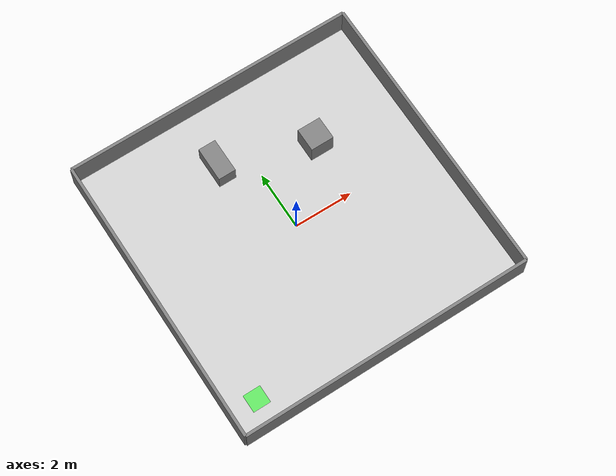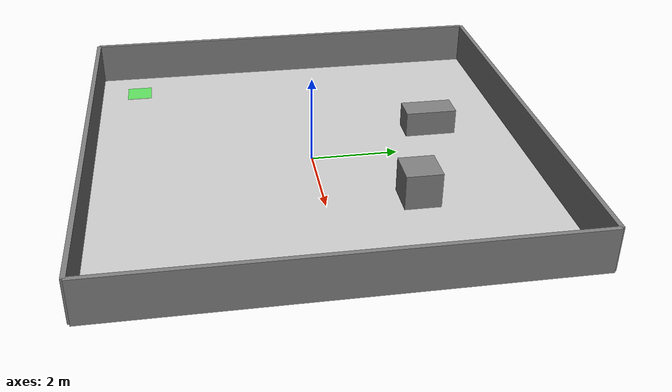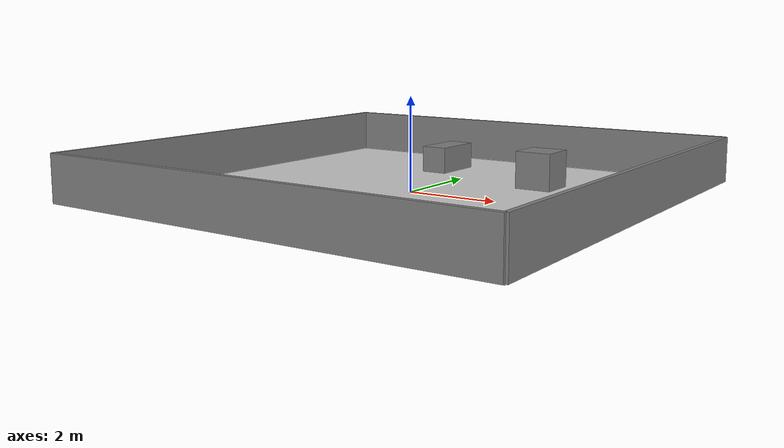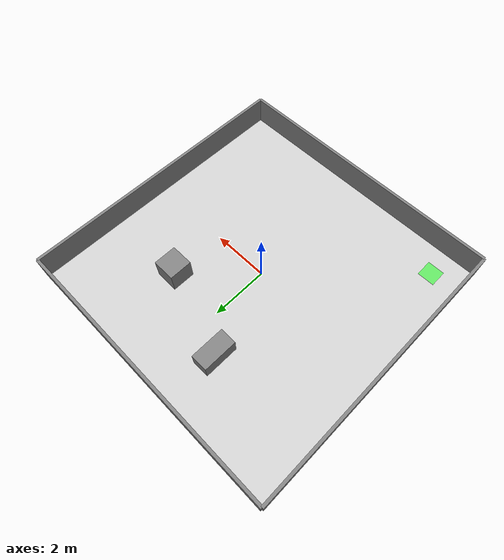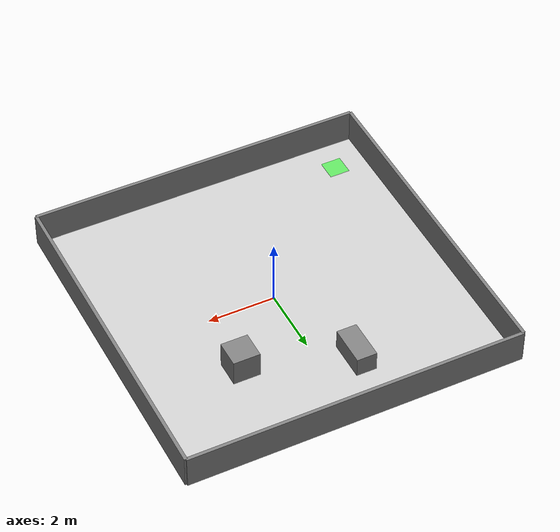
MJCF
<mujoco model="indoor_world">

    <worldbody>

        <geom name="floor"
              type="plane"
              size="5 5 0.1"
              rgba="0.8 0.8 0.8 1"/>

        <light
            directional="true"
            pos="0 0 5"
            dir="0 0 -1"/>

        <geom name="wall_n"
              type="box"
              size="5 0.05 0.5"
              pos="0 5 0.5"/>

        <geom name="wall_s"
              type="box"
              size="5 0.05 0.5"
              pos="0 -5 0.5"/>

        <geom name="wall_e"
              type="box"
              size="0.05 5 0.5"
              pos="5 0 0.5"/>

        <geom name="wall_w"
              type="box"
              size="0.05 5 0.5"
              pos="-5 0 0.5"/>

        <body name="charging_station"
              pos="-4 -4 0.01">

            <geom type="box"
                  size="0.3 0.3 0.01"
                  rgba="0 1 0 0.5"/>

            <site name="docking_port"
                  pos="0 0 0.1"/>

        </body>

        <geom name="obstacle_1"
              type="box"
              size="0.4 0.4 0.4"
              pos="2 2 0.4"/>

        <geom name="obstacle_2"
              type="box"
              size="0.3 0.6 0.3"
              pos="-1 3 0.3"/>

    </worldbody>

</mujoco>
